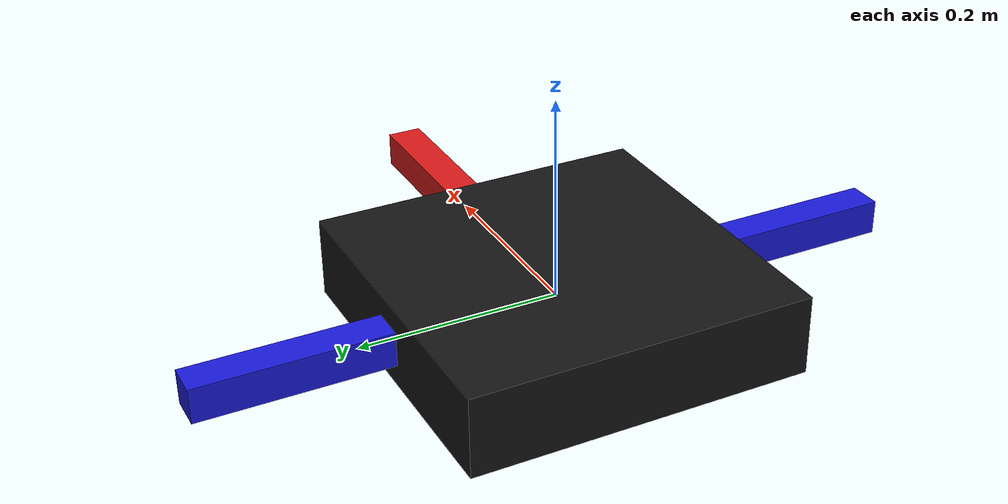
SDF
<?xml version="1.0" ?>
<sdf version="1.7">
  <model name="f450_lio_vio_sensor_rig">
    <pose>0 0 0 0 0 0</pose>
    <static>false</static>

    <link name="base_link">
      <gravity>false</gravity>
      <inertial>
        <mass>2.0</mass>
        <inertia>
          <ixx>0.02</ixx><iyy>0.02</iyy><izz>0.04</izz>
          <ixy>0</ixy><ixz>0</ixz><iyz>0</iyz>
        </inertia>
      </inertial>

      <collision name="body_collision">
        <geometry><box><size>0.34 0.34 0.08</size></box></geometry>
      </collision>
      <visual name="body_visual">
        <geometry><box><size>0.34 0.34 0.08</size></box></geometry>
        <material><ambient>0.08 0.08 0.08 1</ambient><diffuse>0.08 0.08 0.08 1</diffuse></material>
      </visual>

      <visual name="front_arm">
        <pose>0.18 0 0 0 0 0</pose>
        <geometry><box><size>0.36 0.035 0.035</size></box></geometry>
        <material><ambient>0.85 0.1 0.1 1</ambient><diffuse>0.85 0.1 0.1 1</diffuse></material>
      </visual>
      <visual name="left_arm">
        <pose>0 0.18 0 0 0 1.5708</pose>
        <geometry><box><size>0.36 0.035 0.035</size></box></geometry>
        <material><ambient>0.1 0.1 0.85 1</ambient><diffuse>0.1 0.1 0.85 1</diffuse></material>
      </visual>
      <visual name="right_arm">
        <pose>0 -0.18 0 0 0 1.5708</pose>
        <geometry><box><size>0.36 0.035 0.035</size></box></geometry>
        <material><ambient>0.1 0.1 0.85 1</ambient><diffuse>0.1 0.1 0.85 1</diffuse></material>
      </visual>

      <sensor name="imu" type="imu">
        <always_on>true</always_on>
        <update_rate>200</update_rate>
        <topic>/gazebo/imu</topic>
        <imu>
          <angular_velocity>
            <x><noise type="gaussian"><mean>0</mean><stddev>0.002</stddev></noise></x>
            <y><noise type="gaussian"><mean>0</mean><stddev>0.002</stddev></noise></y>
            <z><noise type="gaussian"><mean>0</mean><stddev>0.002</stddev></noise></z>
          </angular_velocity>
          <linear_acceleration>
            <x><noise type="gaussian"><mean>0</mean><stddev>0.03</stddev></noise></x>
            <y><noise type="gaussian"><mean>0</mean><stddev>0.03</stddev></noise></y>
            <z><noise type="gaussian"><mean>0</mean><stddev>0.03</stddev></noise></z>
          </linear_acceleration>
        </imu>
      </sensor>

      <sensor name="lidar_3d" type="gpu_lidar">
        <pose>0 0 0.08 0 0 0</pose>
        <always_on>true</always_on>
        <update_rate>10</update_rate>
        <topic>/gazebo/lidar/points</topic>
        <lidar>
          <scan>
            <horizontal>
              <samples>1024</samples>
              <resolution>1</resolution>
              <min_angle>-3.14159</min_angle>
              <max_angle>3.14159</max_angle>
            </horizontal>
            <vertical>
              <samples>32</samples>
              <resolution>1</resolution>
              <min_angle>-0.43633</min_angle>
              <max_angle>0.43633</max_angle>
            </vertical>
          </scan>
          <range>
            <min>0.5</min>
            <max>60.0</max>
            <resolution>0.02</resolution>
          </range>
          <noise>
            <type>gaussian</type>
            <mean>0</mean>
            <stddev>0.015</stddev>
          </noise>
        </lidar>
      </sensor>

      <sensor name="stereo_left" type="camera">
        <pose>0.12 0.06 0.03 0 0 0</pose>
        <always_on>true</always_on>
        <update_rate>30</update_rate>
        <topic>/gazebo/stereo/left/image</topic>
        <camera>
          <horizontal_fov>1.39626</horizontal_fov>
          <image><width>752</width><height>480</height><format>R8G8B8</format></image>
          <clip><near>0.05</near><far>80</far></clip>
          <noise><type>gaussian</type><mean>0</mean><stddev>0.005</stddev></noise>
        </camera>
      </sensor>

      <sensor name="stereo_right" type="camera">
        <pose>0.12 -0.06 0.03 0 0 0</pose>
        <always_on>true</always_on>
        <update_rate>30</update_rate>
        <topic>/gazebo/stereo/right/image</topic>
        <camera>
          <horizontal_fov>1.39626</horizontal_fov>
          <image><width>752</width><height>480</height><format>R8G8B8</format></image>
          <clip><near>0.05</near><far>80</far></clip>
          <noise><type>gaussian</type><mean>0</mean><stddev>0.005</stddev></noise>
        </camera>
      </sensor>

      <sensor name="rgbd_camera" type="rgbd_camera">
        <pose>0.11 0 0.02 0 0 0</pose>
        <always_on>true</always_on>
        <update_rate>20</update_rate>
        <topic>/gazebo/rgbd</topic>
        <camera>
          <horizontal_fov>1.047</horizontal_fov>
          <image><width>640</width><height>480</height><format>R8G8B8</format></image>
          <clip><near>0.1</near><far>30</far></clip>
          <noise><type>gaussian</type><mean>0</mean><stddev>0.006</stddev></noise>
        </camera>
      </sensor>
    </link>
  </model>
</sdf>
